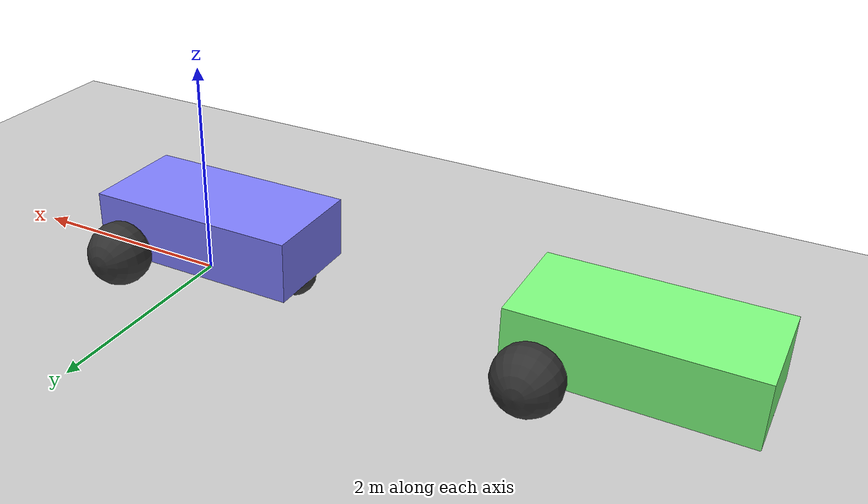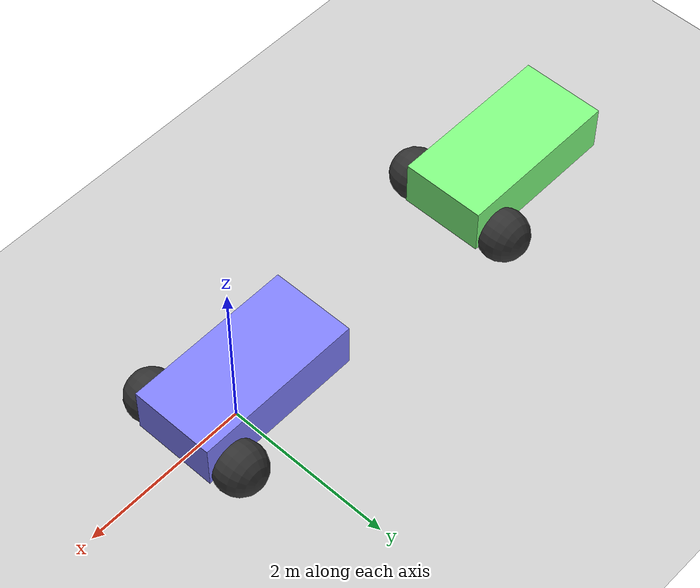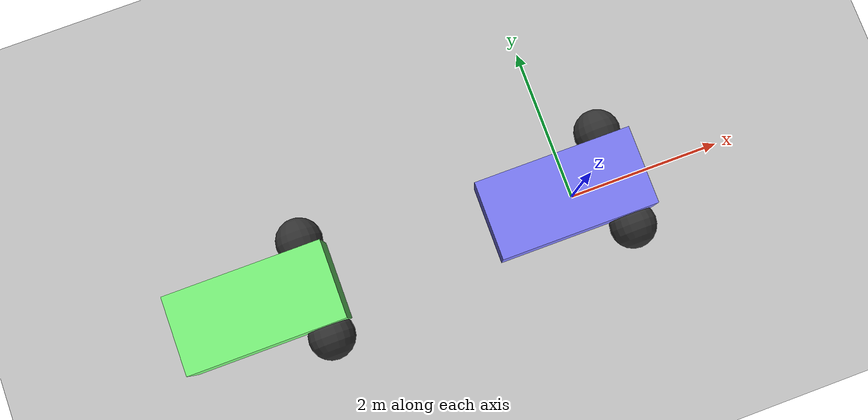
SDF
<?xml version="1.0" ?>
<sdf version="1.6">
  <world name="diff_drive">

    <physics name="1ms" type="ignored">
      <max_step_size>0.001</max_step_size>
      <real_time_factor>1.0</real_time_factor>
    </physics>
    <plugin
      filename="ignition-gazebo-physics-system"
      name="gz::sim::systems::Physics">
    </plugin>
    <plugin
      filename="ignition-gazebo-user-commands-system"
      name="gz::sim::systems::UserCommands">
    </plugin>
    <plugin
      filename="ignition-gazebo-scene-broadcaster-system"
      name="gz::sim::systems::SceneBroadcaster">
    </plugin>

    <light type="directional" name="sun">
      <cast_shadows>true</cast_shadows>
      <pose>0 0 10 0 0 0</pose>
      <diffuse>1 1 1 1</diffuse>
      <specular>0.5 0.5 0.5 1</specular>
      <attenuation>
        <range>1000</range>
        <constant>0.9</constant>
        <linear>0.01</linear>
        <quadratic>0.001</quadratic>
      </attenuation>
      <direction>-0.5 0.1 -0.9</direction>
    </light>

    <model name="ground_plane">
      <static>true</static>
      <link name="link">
        <collision name="collision">
          <geometry>
            <plane>
              <normal>0 0 1</normal>
              <size>100 100</size>
            </plane>
          </geometry>
        </collision>
        <visual name="visual">
          <geometry>
            <plane>
              <normal>0 0 1</normal>
              <size>100 100</size>
            </plane>
          </geometry>
          <material>
            <ambient>0.8 0.8 0.8 1</ambient>
            <diffuse>0.8 0.8 0.8 1</diffuse>
            <specular>0.8 0.8 0.8 1</specular>
          </material>
        </visual>
      </link>
    </model>

    <model name='vehicle_blue'>
      <pose>0 0 0.325 0 -0 0</pose>

      <link name='chassis'>
        <pose>-0.151427 -0 0.175 0 -0 0</pose>
        <inertial>
          <mass>1.14395</mass>
          <inertia>
            <ixx>0.126164</ixx>
            <ixy>0</ixy>
            <ixz>0</ixz>
            <iyy>0.416519</iyy>
            <iyz>0</iyz>
            <izz>0.481014</izz>
          </inertia>
        </inertial>
        <visual name='visual'>
          <geometry>
            <box>
              <size>2.01142 1 0.568726</size>
            </box>
          </geometry>
          <material>
            <ambient>0.5 0.5 1.0 1</ambient>
            <diffuse>0.5 0.5 1.0 1</diffuse>
            <specular>0.0 0.0 1.0 1</specular>
          </material>
        </visual>
        <collision name='collision'>
          <geometry>
            <box>
              <size>2.01142 1 0.568726</size>
            </box>
          </geometry>
        </collision>
      </link>

      <link name='left_wheel'>
        <pose>0.554283 0.625029 -0.025 -1.5707 0 0</pose>
        <inertial>
          <mass>2</mass>
          <inertia>
            <ixx>0.145833</ixx>
            <ixy>0</ixy>
            <ixz>0</ixz>
            <iyy>0.145833</iyy>
            <iyz>0</iyz>
            <izz>0.125</izz>
          </inertia>
        </inertial>
        <visual name='visual'>
          <geometry>
            <sphere>
              <radius>0.3</radius>
            </sphere>
          </geometry>
          <material>
            <ambient>0.2 0.2 0.2 1</ambient>
            <diffuse>0.2 0.2 0.2 1</diffuse>
            <specular>0.2 0.2 0.2 1</specular>
          </material>
        </visual>
        <collision name='collision'>
          <geometry>
            <sphere>
              <radius>0.3</radius>
            </sphere>
          </geometry>
        </collision>
      </link>

      <link name='right_wheel'>
        <pose>0.554282 -0.625029 -0.025 -1.5707 0 0</pose>
        <inertial>
          <mass>2</mass>
          <inertia>
            <ixx>0.145833</ixx>
            <ixy>0</ixy>
            <ixz>0</ixz>
            <iyy>0.145833</iyy>
            <iyz>0</iyz>
            <izz>0.125</izz>
          </inertia>
        </inertial>
        <visual name='visual'>
          <geometry>
            <sphere>
              <radius>0.3</radius>
            </sphere>
          </geometry>
          <material>
            <ambient>0.2 0.2 0.2 1</ambient>
            <diffuse>0.2 0.2 0.2 1</diffuse>
            <specular>0.2 0.2 0.2 1</specular>
          </material>
        </visual>
        <collision name='collision'>
          <geometry>
            <sphere>
              <radius>0.3</radius>
            </sphere>
          </geometry>
        </collision>
      </link>

      <link name='caster'>
        <pose>-0.957138 -0 -0.125 0 -0 0</pose>
        <inertial>
          <mass>1</mass>
          <inertia>
            <ixx>0.1</ixx>
            <ixy>0</ixy>
            <ixz>0</ixz>
            <iyy>0.1</iyy>
            <iyz>0</iyz>
            <izz>0.1</izz>
          </inertia>
        </inertial>
        <visual name='visual'>
          <geometry>
            <sphere>
              <radius>0.2</radius>
            </sphere>
          </geometry>
          <material>
            <ambient>0.2 0.2 0.2 1</ambient>
            <diffuse>0.2 0.2 0.2 1</diffuse>
            <specular>0.2 0.2 0.2 1</specular>
          </material>
        </visual>
        <collision name='collision'>
          <geometry>
            <sphere>
              <radius>0.2</radius>
            </sphere>
          </geometry>
        </collision>
      </link>

      <joint name='left_wheel_joint' type='revolute'>
        <parent>chassis</parent>
        <child>left_wheel</child>
        <axis>
          <xyz>0 0 1</xyz>
          <limit>
            <lower>-1.79769e+308</lower>
            <upper>1.79769e+308</upper>
          </limit>
        </axis>
      </joint>

      <joint name='right_wheel_joint' type='revolute'>
        <parent>chassis</parent>
        <child>right_wheel</child>
        <axis>
          <xyz>0 0 1</xyz>
          <limit>
            <lower>-1.79769e+308</lower>
            <upper>1.79769e+308</upper>
          </limit>
        </axis>
      </joint>

      <joint name='caster_wheel' type='ball'>
        <parent>chassis</parent>
        <child>caster</child>
      </joint>

      <plugin
        filename="ignition-gazebo-diff-drive-system"
        name="gz::sim::systems::DiffDrive">
        <left_joint>left_wheel_joint</left_joint>
        <right_joint>right_wheel_joint</right_joint>
        <wheel_separation>1.25</wheel_separation>
        <wheel_radius>0.3</wheel_radius>
        <odom_publish_frequency>1</odom_publish_frequency>
        <max_linear_acceleration>5</max_linear_acceleration>
        <min_linear_acceleration>-5</min_linear_acceleration>
        <max_angular_acceleration>2</max_angular_acceleration>
        <min_angular_acceleration>-2</min_angular_acceleration>
        <max_linear_velocity>1</max_linear_velocity>
        <min_linear_velocity>-1</min_linear_velocity>
        <max_angular_velocity>1</max_angular_velocity>
        <min_angular_velocity>-1</min_angular_velocity>
      </plugin>

    </model>

    <model name='vehicle_green'>
      <pose>-4 0 0.325 0 -0 0</pose>

      <link name='chassis'>
        <pose>-0.151427 -0 0.175 0 -0 0</pose>
        <inertial>
          <mass>1.14395</mass>
          <inertia>
            <ixx>0.126164</ixx>
            <ixy>0</ixy>
            <ixz>0</ixz>
            <iyy>0.416519</iyy>
            <iyz>0</iyz>
            <izz>0.481014</izz>
          </inertia>
        </inertial>
        <visual name='visual'>
          <geometry>
            <box>
              <size>2.01142 1 0.568726</size>
            </box>
          </geometry>
          <material>
            <ambient>0.5 1.0 0.5 1</ambient>
            <diffuse>0.5 1.0 0.5 1</diffuse>
            <specular>0.0 1.0 0.0 1</specular>
          </material>
        </visual>
        <collision name='collision'>
          <geometry>
            <box>
              <size>2.01142 1 0.568726</size>
            </box>
          </geometry>
        </collision>
      </link>

      <link name='left_wheel'>
        <pose>0.554283 0.625029 -0.025 -1.5707 0 0</pose>
        <inertial>
          <mass>2</mass>
          <inertia>
            <ixx>0.145833</ixx>
            <ixy>0</ixy>
            <ixz>0</ixz>
            <iyy>0.145833</iyy>
            <iyz>0</iyz>
            <izz>0.125</izz>
          </inertia>
        </inertial>
        <visual name='visual'>
          <geometry>
            <sphere>
              <radius>0.3</radius>
            </sphere>
          </geometry>
          <material>
            <ambient>0.2 0.2 0.2 1</ambient>
            <diffuse>0.2 0.2 0.2 1</diffuse>
            <specular>0.2 0.2 0.2 1</specular>
          </material>
        </visual>
        <collision name='collision'>
          <geometry>
            <sphere>
              <radius>0.3</radius>
            </sphere>
          </geometry>
        </collision>
      </link>

      <link name='right_wheel'>
        <pose>0.554282 -0.625029 -0.025 -1.5707 0 0</pose>
        <inertial>
          <mass>2</mass>
          <inertia>
            <ixx>0.145833</ixx>
            <ixy>0</ixy>
            <ixz>0</ixz>
            <iyy>0.145833</iyy>
            <iyz>0</iyz>
            <izz>0.125</izz>
          </inertia>
        </inertial>
        <visual name='visual'>
          <geometry>
            <sphere>
              <radius>0.3</radius>
            </sphere>
          </geometry>
          <material>
            <ambient>0.2 0.2 0.2 1</ambient>
            <diffuse>0.2 0.2 0.2 1</diffuse>
            <specular>0.2 0.2 0.2 1</specular>
          </material>
        </visual>
        <collision name='collision'>
          <geometry>
            <sphere>
              <radius>0.3</radius>
            </sphere>
          </geometry>
        </collision>
      </link>

      <link name='caster'>
        <pose>-0.957138 -0 -0.125 0 -0 0</pose>
        <inertial>
          <mass>1</mass>
          <inertia>
            <ixx>0.1</ixx>
            <ixy>0</ixy>
            <ixz>0</ixz>
            <iyy>0.1</iyy>
            <iyz>0</iyz>
            <izz>0.1</izz>
          </inertia>
        </inertial>
        <visual name='visual'>
          <geometry>
            <sphere>
              <radius>0.2</radius>
            </sphere>
          </geometry>
          <material>
            <ambient>0.2 0.2 0.2 1</ambient>
            <diffuse>0.2 0.2 0.2 1</diffuse>
            <specular>0.2 0.2 0.2 1</specular>
          </material>
        </visual>
        <collision name='collision'>
          <geometry>
            <sphere>
              <radius>0.2</radius>
            </sphere>
          </geometry>
        </collision>
      </link>

      <joint name='left_wheel_joint' type='revolute'>
        <parent>chassis</parent>
        <child>left_wheel</child>
        <axis>
          <xyz>0 0 1</xyz>
          <limit>
            <lower>-1.79769e+308</lower>
            <upper>1.79769e+308</upper>
          </limit>
        </axis>
      </joint>

      <joint name='right_wheel_joint' type='revolute'>
        <parent>chassis</parent>
        <child>right_wheel</child>
        <axis>
          <xyz>0 0 1</xyz>
          <limit>
            <lower>-1.79769e+308</lower>
            <upper>1.79769e+308</upper>
          </limit>
        </axis>
      </joint>

      <joint name='caster_wheel' type='ball'>
        <parent>chassis</parent>
        <child>caster</child>
      </joint>

      <plugin
        filename="ignition-gazebo-diff-drive-system"
        name="gz::sim::systems::DiffDrive">
        <left_joint>left_wheel_joint</left_joint>
        <right_joint>right_wheel_joint</right_joint>
        <wheel_separation>1.25</wheel_separation>
        <wheel_radius>0.3</wheel_radius>
        <max_linear_acceleration>5</max_linear_acceleration>
        <min_linear_acceleration>-5</min_linear_acceleration>
        <max_angular_acceleration>2</max_angular_acceleration>
        <min_angular_acceleration>-2</min_angular_acceleration>
        <max_linear_velocity>1</max_linear_velocity>
        <min_linear_velocity>-1</min_linear_velocity>
        <max_angular_velocity>1</max_angular_velocity>
        <min_angular_velocity>-1</min_angular_velocity>
      </plugin>

    </model>

    <!-- Moving Foward with the front arrow-->
    <plugin filename = "libignition-gazebo-triggered-publisher-system.so"
            name = "ignition::gazebo::systems::TriggeredPublisher">
        <input type="ignition.msgs.Int32" topic="/keyboard/keypress">
            <match field="data">16777235</match>
        </input>
        <output type="ignition.msgs.Twist" topic="/model/vehicle_blue/cmd_vel">
            linear: {x: 1.0}, angular: {z: 0.0}
        </output>
    </plugin>

    <!-- Moving Backward with the back arrow -->
    <plugin filename = "libignition-gazebo-triggered-publisher-system.so"
            name = "ignition::gazebo::systems::TriggeredPublisher">
        <input type="ignition.msgs.Int32" topic="/keyboard/keypress">
            <match field="data">16777237</match>
        </input>
        <output type="ignition.msgs.Twist" topic="/model/vehicle_blue/cmd_vel">
            linear: {x: -1.0}, angular: {z: 0.0}
        </output>
    </plugin>

    <!-- Rotating right with the right arrow -->
    <plugin filename = "libignition-gazebo-triggered-publisher-system.so"
            name = "ignition::gazebo::systems::TriggeredPublisher">
        <input type="ignition.msgs.Int32" topic="/keyboard/keypress">
            <match field="data">16777236</match>
        </input>
        <output type="ignition.msgs.Twist" topic="/model/vehicle_blue/cmd_vel">
            linear: {x: 0.0}, angular: {z: -1.0}
        </output>
    </plugin>

    <!-- Rotating left with the left arrow -->
    <plugin filename = "libignition-gazebo-triggered-publisher-system.so"
            name = "ignition::gazebo::systems::TriggeredPublisher">
        <input type="ignition.msgs.Int32" topic="/keyboard/keypress">
            <match field="data">16777234</match>
        </input>
        <output type="ignition.msgs.Twist" topic="/model/vehicle_blue/cmd_vel">
              linear: {x: 0.0}, angular: {z: 1.0}
        </output>
    </plugin>

  </world>
</sdf>
